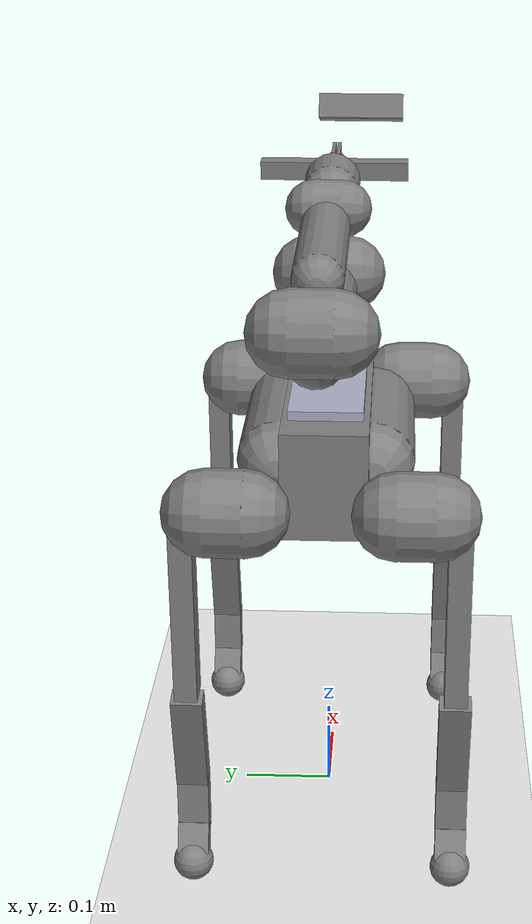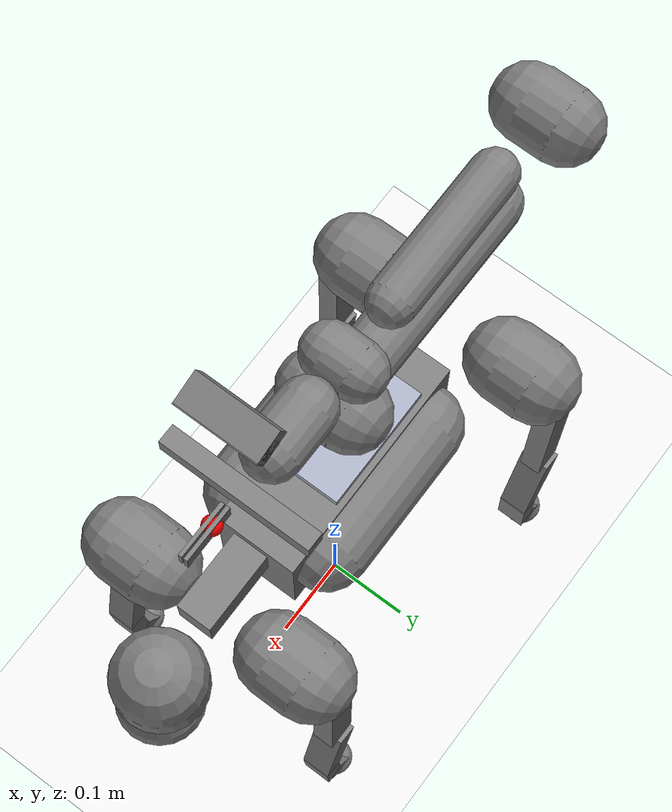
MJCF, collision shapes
<mujoco model="flat scene">
      <include file="go2_piper_l.xml"/>

      <statistic center="0 0 0.1" extent="0.8"/>

      <visual>
            <headlight diffuse="0.4 0.4 0.4" ambient="0.25 0.25 0.25" specular="0.25 0.25 0.25"/>
            <rgba haze="0.99 0.99 0.99 1"/>
            <global azimuth="-130" elevation="-20"/>
      </visual>
      <asset>
            <texture
                  type="skybox"
                  builtin="gradient"
                  rgb1="0.99 0.99 0.99"
                  rgb2="0.99 0.99 0.99"
                  width="512"
                  height="3072"
            />
            <texture
                  type="2d"
                  name="groundplane"
                  builtin="checker"
                  mark="edge"
                  rgb1="0.93 0.93 0.93"
                  rgb2="0.93 0.93 0.93"
                  markrgb="0 0 0"
                  width="250"
                  height="250"
            />
            <material name="groundplane" texture="groundplane" texuniform="true" texrepeat="5 5" reflectance="0.0"/>

      </asset>

      <worldbody>
            <light pos="0 0 5.0" dir="0 0 -1" directional="true" castshadow="false"/>

            <geom name="floor" size="0 0 0.05" type="plane" material="groundplane"/>
      </worldbody>
</mujoco>

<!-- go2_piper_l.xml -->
<mujoco model="go2_piper_l">
    <compiler angle="radian" autolimits="true"/>

    <option cone="elliptic" impratio="100"/>

    <default>
        <default class="go2">
            <joint axis="0 1 0"/>
            <geom friction="0.6" margin="0.001"/>
            <motor ctrlrange="-23.7 23.7"/>
            <default class="abduction">
                <joint axis="1 0 0" range="-1.0472 1.0472"/>
            </default>
            <default class="hip">
                <default class="front_hip">
                    <joint range="-1.5708 3.4907"/>
                </default>
                <default class="back_hip">
                    <joint range="-0.5236 4.5379"/>
                </default>
            </default>
            <default class="knee">
                <joint range="-2.7227 -0.83776"/>
                <motor ctrlrange="-45.43 45.43"/>
            </default>
            <default class="visual">
                <geom type="mesh" contype="0" conaffinity="0" group="2"/>
            </default>
            <default class="collision">
                <geom group="3"/>
            </default>
        </default>
    </default>

    <asset>
        <material name="metal" rgba=".9 .95 .95 1"/>
        <material name="black" rgba="0 0 0 1"/>
        <material name="white" rgba="1 1 1 1"/>
        <material name="gray" rgba="0.671705 0.692426 0.774270 1"/>

        <mesh file="go2/assets/base_0.obj"/>
        <mesh file="go2/assets/base_1.obj"/>
        <mesh file="go2/assets/base_2.obj"/>
        <mesh file="go2/assets/base_3.obj"/>
        <mesh file="go2/assets/base_4.obj"/>
        <mesh file="go2/assets/hip_0.obj"/>
        <mesh file="go2/assets/hip_1.obj"/>
        <mesh file="go2/assets/thigh_0.obj"/>
        <mesh file="go2/assets/thigh_1.obj"/>
        <mesh file="go2/assets/thigh_mirror_0.obj"/>
        <mesh file="go2/assets/thigh_mirror_1.obj"/>
        <mesh file="go2/assets/calf_0.obj"/>
        <mesh file="go2/assets/calf_1.obj"/>
        <mesh file="go2/assets/calf_mirror_0.obj"/>
        <mesh file="go2/assets/calf_mirror_1.obj"/>
        <mesh file="go2/assets/foot.obj"/>

        <mesh name="base_link" file="piper_l/assets/base_link.STL"/>
        <mesh name="link1" file="piper_l/assets/link1.STL"/>
        <mesh name="link2" file="piper_l/assets/link2.STL"/>
        <mesh name="link3" file="piper_l/assets/link3.STL"/>
        <mesh name="link4" file="piper_l/assets/link4.STL"/>
        <mesh name="link5" file="piper_l/assets/link5.STL"/>
        <mesh name="link7" file="piper_l/assets/link7.STL"/>
        <mesh name="link8" file="piper_l/assets/link8.STL"/>
        <mesh name="gripper_base_100_v3" file="piper_l/assets/gripper_base_100_v3.STL"/>
        <mesh name="realsense_mid_stand_v2" content_type="model/stl" file="piper_l/assets/realsense_mid_stand_v2.STL"/>
    </asset>

    <worldbody>
        <body name="base" pos="0 0 0.445" childclass="go2">
            <inertial pos="0.021112 0 -0.005366" quat="-0.000543471 0.713435 -0.00173769 0.700719" mass="6.921"
                      diaginertia="0.107027 0.0980771 0.0244531"/>
            <freejoint/>

            <geom mesh="base_0" material="black" class="visual"/>
            <geom mesh="base_1" material="black" class="visual"/>
            <geom mesh="base_2" material="black" class="visual"/>
            <geom mesh="base_3" material="white" class="visual"/>
            <geom mesh="base_4" material="gray" class="visual"/>
            <geom size="0.07 0.04 0.01" pos="-0.02 0.0 0.06" material="gray" type="box" class="visual"/>

            <geom size="0.13 0.04675 0.06" type="box" class="collision"/>
            <geom size="0.07 0.04 0.01" pos="-0.02 0.0 0.06" type="box" class="collision"/>
            <geom size="0.045 0.02 0.02" pos="0.18 0.0 0.055" type="box" class="collision"/>
            <geom size="0.045 0.08" pos="0.0 0.05 0.01" quat="0.707107 0 0.707107 0" type="capsule" class="collision"/>
            <geom size="0.045 0.08" pos="0.0 -0.05 0.01" quat="0.707107 0 0.707107 0" type="capsule" class="collision"/>

            <geom size="0.05 0.018" pos="0.285 0 0.01" type="capsule" class="collision"/>
            <geom size="0.047" pos="0.293 0 -0.06" class="collision"/>

            <site name="imu" pos="-0.02557 0 0.04232"/>

            <body name="FL_hip" pos="0.1934 0.0465 0">
                <inertial pos="-0.0054 0.00194 -0.000105" quat="0.497014 0.499245 0.505462 0.498237" mass="0.678"
                          diaginertia="0.00088403 0.000596003 0.000479967"/>
                <joint name="FL_hip_joint" class="abduction" damping="0.1531" armature="0.0010" frictionloss="0.2884"/>
                <geom mesh="hip_0" material="metal" class="visual"/>
                <geom mesh="hip_1" material="gray" class="visual"/>
                <geom size="0.046 0.02" pos="0 0.05 0" quat="1 1 0 0" type="capsule" class="collision"/>
                <body name="FL_thigh" pos="0 0.0955 0">
                    <inertial pos="-0.00374 -0.0223 -0.0327" quat="0.829533 0.0847635 -0.0200632 0.551623" mass="1.152"
                              diaginertia="0.00594973 0.00584149 0.000878787"/>
                    <joint name="FL_thigh_joint" class="front_hip" damping="0.2406" armature="0.0197" frictionloss="0.1739"/>
                    <geom mesh="thigh_0" material="metal" class="visual"/>
                    <geom mesh="thigh_1" material="gray" class="visual"/>
                    <geom size="0.1065 0.01225 0.017" pos="0 0 -0.1065" quat="0.707107 0 0.707107 0" type="box"
                          class="collision"/>
                    <body name="FL_calf" pos="0 0 -0.213">
                        <inertial pos="0.00629595 -0.000622121 -0.141417"
                                  quat="0.710672 0.00154099 -0.00450087 0.703508"
                                  mass="0.241352" diaginertia="0.0014901 0.00146356 5.31397e-05"/>
                        <joint name="FL_calf_joint" class="knee" damping="0.1450" armature="0.0356" frictionloss="1.0151"/>
                        <geom mesh="calf_0" material="gray" class="visual"/>
                        <geom mesh="calf_1" material="black" class="visual"/>
                        <geom size="0.012 0.017  0.06" pos="0.008 0 -0.06" quat="0.994493 0 -0.104807 0" type="box"
                              class="collision"/>
                        <geom size="0.011 0.017  0.03" pos="0.02 0 -0.148" quat="0.999688 0 0.0249974 0" type="box"
                              class="collision"/>
                        <geom size="0.011 0.017  0.017" pos="0.008 0 -0.190" quat="0.999688 0 0.249974 0" type="box"
                              class="collision"/>
                        <geom pos="0 0 -0.213" mesh="foot" class="visual" material="black"/>

                        <!--geom name="FL" class="collision" size="0.022" pos="-0.002 0 -0.213" priority="1" condim="6"
                          friction="0.8 0.02 0.01"/-->

                        <body name="FL_foot" pos="-0.002 0 -0.213">
                            <inertial pos="0 0 0" mass="0.02" diaginertia="3.872e-06 3.872e-06 3.872e-06"/>
                            <!-- FL_foot only collision -->
                            <geom name="FL" class="collision" size="0.022"/>
                        </body>

                    </body>
                </body>
            </body>
            <body name="FR_hip" pos="0.1934 -0.0465 0">
                <inertial pos="-0.0054 -0.00194 -0.000105" quat="0.498237 0.505462 0.499245 0.497014" mass="0.678"
                          diaginertia="0.00088403 0.000596003 0.000479967"/>
                <joint name="FR_hip_joint" class="abduction" damping="0.2628" armature="0.0129" frictionloss="0.1835"/>
                <geom mesh="hip_0" material="metal" class="visual" quat="4.63268e-05 1 0 0"/>
                <geom mesh="hip_1" material="gray" class="visual" quat="4.63268e-05 1 0 0"/>
                <geom size="0.046 0.02" pos="0 -0.05 0" quat="0.707107 0.707107 0 0" type="capsule" class="collision"/>
                <body name="FR_thigh" pos="0 -0.0955 0">
                    <inertial pos="-0.00374 0.0223 -0.0327" quat="0.551623 -0.0200632 0.0847635 0.829533" mass="1.152"
                              diaginertia="0.00594973 0.00584149 0.000878787"/>
                    <joint name="FR_thigh_joint" class="front_hip" damping="0.1420" armature="0.0135" frictionloss="0.2386"/>
                    <geom mesh="thigh_mirror_0" material="metal" class="visual"/>
                    <geom mesh="thigh_mirror_1" material="gray" class="visual"/>
                    <geom size="0.1065 0.01225 0.017" pos="0 0 -0.1065" quat="0.707107 0 0.707107 0" type="box"
                          class="collision"/>
                    <body name="FR_calf" pos="0 0 -0.213">
                        <inertial pos="0.00629595 0.000622121 -0.141417" quat="0.703508 -0.00450087 0.00154099 0.710672"
                                  mass="0.241352" diaginertia="0.0014901 0.00146356 5.31397e-05"/>
                        <joint name="FR_calf_joint" class="knee" damping="0.1728" armature="0.0371" frictionloss="0.4912"/>
                        <geom mesh="calf_mirror_0" material="gray" class="visual"/>
                        <geom mesh="calf_mirror_1" material="black" class="visual"/>
                        <geom size="0.012 0.017  0.06" pos="0.008 0 -0.06" quat="0.994493 0 -0.104807 0" type="box"
                              class="collision"/>
                        <geom size="0.011 0.017  0.03" pos="0.02 0 -0.148" quat="0.999688 0 0.0249974 0" type="box"
                              class="collision"/>
                        <geom size="0.011 0.017  0.017" pos="0.008 0 -0.190" quat="0.999688 0 0.249974 0" type="box"
                              class="collision"/>
                        <geom pos="0 0 -0.213" mesh="foot" class="visual" material="black"/>

                        <!--geom name="FR" class="collision" size="0.022" pos="-0.002 0 -0.213" priority="1" condim="6"
                          friction="0.8 0.02 0.01"/-->

                        <body name="FR_foot" pos="-0.002 0 -0.213">
                            <inertial pos="0 0 0" mass="0.02" diaginertia="3.872e-06 3.872e-06 3.872e-06"/>
                            <!-- FR_foot only collision -->
                            <geom name="FR" class="collision" size="0.022"/>
                        </body>

                    </body>
                </body>
            </body>
            <body name="RL_hip" pos="-0.1934 0.0465 0">
                <inertial pos="0.0054 0.00194 -0.000105" quat="0.505462 0.498237 0.497014 0.499245" mass="0.678"
                          diaginertia="0.00088403 0.000596003 0.000479967"/>
                <joint name="RL_hip_joint" class="abduction" damping="0.2243" armature="0.0075" frictionloss="0.1550"/>
                <geom mesh="hip_0" material="metal" class="visual" quat="4.63268e-05 0 1 0"/>
                <geom mesh="hip_1" material="gray" class="visual" quat="4.63268e-05 0 1 0"/>
                <geom size="0.046 0.02" pos="0 0.05 0" quat="0.707107 0.707107 0 0" type="capsule" class="collision"/>
                <body name="RL_thigh" pos="0 0.0955 0">
                    <inertial pos="-0.00374 -0.0223 -0.0327" quat="0.829533 0.0847635 -0.0200632 0.551623" mass="1.152"
                              diaginertia="0.00594973 0.00584149 0.000878787"/>
                    <joint name="RL_thigh_joint" class="back_hip" damping="0.2352" armature="0.0205" frictionloss="0.1388"/>
                    <geom mesh="thigh_0" material="metal" class="visual"/>
                    <geom mesh="thigh_1" material="gray" class="visual"/>
                    <geom size="0.1065 0.01225 0.017" pos="0 0 -0.1065" quat="0.707107 0 0.707107 0" type="box"
                          class="collision"/>
                    <body name="RL_calf" pos="0 0 -0.213">
                        <inertial pos="0.00629595 -0.000622121 -0.141417"
                                  quat="0.710672 0.00154099 -0.00450087 0.703508"
                                  mass="0.241352" diaginertia="0.0014901 0.00146356 5.31397e-05"/>
                        <joint name="RL_calf_joint" class="knee" damping="0.1201" armature="0.0228" frictionloss="1.3573"/>
                        <geom mesh="calf_0" material="gray" class="visual"/>
                        <geom mesh="calf_1" material="black" class="visual"/>
                        <geom size="0.012 0.017  0.06" pos="0.008 0 -0.06" quat="0.994493 0 -0.104807 0" type="box"
                              class="collision"/>
                        <geom size="0.011 0.017  0.03" pos="0.02 0 -0.148" quat="0.999688 0 0.0249974 0" type="box"
                              class="collision"/>
                        <geom size="0.011 0.017  0.017" pos="0.008 0 -0.190" quat="0.999688 0 0.249974 0" type="box"
                              class="collision"/>
                        <geom pos="0 0 -0.213" mesh="foot" class="visual" material="black"/>

                        <!--geom name="RL" class="collision" size="0.022" pos="-0.002 0 -0.213" priority="1" condim="6"
                          friction="0.8 0.02 0.01"/-->

                        <body name="RL_foot" pos="-0.002 0 -0.213">
                            <inertial pos="0 0 0" mass="0.02" diaginertia="3.872e-06 3.872e-06 3.872e-06"/>
                            <!-- RL_foot only collision -->
                            <geom name="RL" class="collision" size="0.022"/>
                        </body>

                    </body>
                </body>
            </body>
            <body name="RR_hip" pos="-0.1934 -0.0465 0">
                <inertial pos="0.0054 -0.00194 -0.000105" quat="0.499245 0.497014 0.498237 0.505462" mass="0.678"
                          diaginertia="0.00088403 0.000596003 0.000479967"/>
                <joint name="RR_hip_joint" class="abduction" damping="0.2989" armature="0.0081" frictionloss="0.2488"/>
                <geom mesh="hip_0" material="metal" class="visual" quat="2.14617e-09 4.63268e-05 4.63268e-05 -1"/>
                <geom mesh="hip_1" material="gray" class="visual" quat="2.14617e-09 4.63268e-05 4.63268e-05 -1"/>
                <geom size="0.046 0.02" pos="0 -0.05 0" quat="0.707107 0.707107 0 0" type="capsule" class="collision"/>
                <body name="RR_thigh" pos="0 -0.0955 0">
                    <inertial pos="-0.00374 0.0223 -0.0327" quat="0.551623 -0.0200632 0.0847635 0.829533" mass="1.152"
                              diaginertia="0.00594973 0.00584149 0.000878787"/>
                    <joint name="RR_thigh_joint" class="back_hip" damping="0.1983" armature="0.0139" frictionloss="0.2484"/>
                    <geom mesh="thigh_mirror_0" material="metal" class="visual"/>
                    <geom mesh="thigh_mirror_1" material="gray" class="visual"/>
                    <geom size="0.1065 0.01225 0.017" pos="0 0 -0.1065" quat="0.707107 0 0.707107 0" type="box"
                          class="collision"/>
                    <body name="RR_calf" pos="0 0 -0.213">
                        <inertial pos="0.00629595 0.000622121 -0.141417" quat="0.703508 -0.00450087 0.00154099 0.710672"
                                  mass="0.241352" diaginertia="0.0014901 0.00146356 5.31397e-05"/>
                        <joint name="RR_calf_joint" class="knee" damping="0.1000" armature="0.0332" frictionloss="0.7893"/>
                        <geom mesh="calf_mirror_0" material="gray" class="visual"/>
                        <geom mesh="calf_mirror_1" material="black" class="visual"/>
                        <geom size="0.012 0.017  0.06" pos="0.008 0 -0.06" quat="0.994493 0 -0.104807 0" type="box"
                              class="collision"/>
                        <geom size="0.011 0.017  0.03" pos="0.02 0 -0.148" quat="0.999688 0 0.0249974 0" type="box"
                              class="collision"/>
                        <geom size="0.011 0.017  0.017" pos="0.008 0 -0.190" quat="0.999688 0 0.249974 0" type="box"
                              class="collision"/>
                        <geom pos="0 0 -0.213" mesh="foot" class="visual" material="black"/>

                        <!--geom name="RR" class="collision" size="0.022" pos="-0.002 0 -0.213" priority="1" condim="6"
                          friction="0.8 0.02 0.01"/-->

                        <body name="RR_foot" pos="-0.002 0 -0.213">
                            <inertial pos="0 0 0" mass="0.02" diaginertia="3.872e-06 3.872e-06 3.872e-06"/>
                            <!-- RR_foot only collision -->
                            <geom name="RR" class="collision" size="0.022"/>
                        </body>

                    </body>
                </body>
            </body>

            <!-- piper_l arm (from piper_l/piper_l.xml) -->
            <geom pos="0 0 0.07" quat="0.999994 0.000457118 0.00346448 0" class="visual" material="gray" mesh="base_link"/>
            <body name="link1" pos="0.000852257 -0.00011245 0.192997" quat="0.999994 0.000457118 0.00346448 0">
              <inertial pos="-0.000108818 0.000607029 -0.00538686" quat="0.701411 0.712748 -0.000102414 -0.00362695" mass="0.71" diaginertia="0.000458361 0.000409985 0.000334505"/>
              <joint name="joint1" pos="0 0 0" axis="0 0 1" range="-2.618 2.618" armature="0.2380" damping="0.5000" frictionloss="0.5000"/>
              <geom class="visual" material="gray" mesh="link1"/>

              <body name="link2" quat="0.047971 -0.0479709 -0.705478 -0.705478">
                <inertial pos="0.258453 -0.00907882 0.00209824" quat="0.33951 0.630002 0.324014 0.618745" mass="1.16404" diaginertia="0.0162743 0.0162573 0.000956571"/>
                <joint name="joint2" pos="0 0 0" axis="0 0 1" range="0 3.14" armature="0.2069" damping="0.5000" frictionloss="0.5000"/>
                <geom class="visual" material="gray" mesh="link2"/>
                <geom class="collision" size="0.04 0.02" quat="0.707107 0 0 0.707107" type="capsule"/>
                <geom class="collision" size="0.03 0.1" pos="0.15 -0.025 0" quat="0.703163 0 0.703163 -0.105474" type="capsule"/>

                <body name="link3" pos="0.33823 0 0" quat="0.624016 0 0 -0.781412">
                  <inertial pos="-0.00810222 -0.192422 -0.000651809" quat="0.709181 0.703284 -0.0204559 0.0451178" mass="0.583343" diaginertia="0.00556992 0.00550867 0.000258804"/>
                  <joint name="joint3" pos="0 0 0" axis="0 0 1" range="-2.697 0" armature="0.3453" damping="0.5000" frictionloss="0.5000"/>
                  <geom class="visual" material="gray" mesh="link3"/>
                  <geom class="collision" size="0.04 0.02" quat="0.707107 0 0 0.707107" type="capsule"/>
                  <geom class="collision" size="0.025 0.08" pos="-0.01 -0.17 0" quat="0.706665 0.706665 0 0.0353333" type="capsule"/>

                  <body name="link4" pos="0 -0.32075 0" quat="0.705117 0.70512 0.0529832 0.0529834">
                    <inertial pos="0.00312889 -0.00168781 -0.00425666" quat="0.859761 0.0861299 -0.104595 0.492395" mass="0.366062" diaginertia="0.000174503 0.000169733 0.000142021"/>
                    <joint name="joint4" pos="0 0 0" axis="0 0 1" range="-1.832 1.832" armature="0.0010" damping="0.2497" frictionloss="0.1074"/>
                    <geom class="visual" material="gray" mesh="link4"/>
                    <geom class="collision" size="0.03 0.015" quat="0.707107 0.707107 0 0" type="capsule"/>

                    <body name="link5" quat="0.706222 -0.706225 -0.0353407 -0.0353405">
                      <inertial pos="0.00417769 -0.0639706 -0.00267944" quat="0.609413 0.425035 -0.377108 0.552947" mass="0.376242" diaginertia="0.000302186 0.000295139 0.000150851"/>
                      <joint name="joint5" pos="0 0 0" axis="0 0 1" range="-1.22 1.22" armature="0.0232" damping="0.1736" frictionloss="0.1433"/>
                      <geom class="visual" material="gray" mesh="link5"/>
                      <geom class="collision" size="0.03 0.025" pos="0 -0.08 0" quat="0.707107 0.707107 0 0" type="capsule"/>

                      <body name="link6" pos="0 -0.091 0" quat="0.707105 0.707108 0 0">
                        <inertial pos="0.0111527268 0.00269159034 0.0371316254" quat="0.491523877 0.525880573 -0.516820751 -0.463411494" mass="0.537494" diaginertia="0.000323982045 0.000453515785 0.000630547405"/>
                        <joint name="joint6" pos="0 0 0" axis="0 0 1" range="-3.14 3.14" armature="0.0010" damping="0.2864" frictionloss="0.0404"/>
                        <geom class="visual" pos="0.008 -0.002 0.064" quat="0.500398 -0.5 -0.499602 0.5" material="gray" mesh="gripper_base_100_v3"/>
                        <geom class="collision" size="0.082 0.01 0.01" pos="0 0 0.06" quat="0.500398 -0.5 -0.499602 0.5" type="box"/>

                        <!-- realsense stand (geometry only, mass is in the link6 inertial) -->
                        <geom pos="-0.034 -0.002 0.023" quat="0.000563312 -0.706825 0.707388 0.000562864" mesh="realsense_mid_stand_v2" class="visual"/>
                        <geom size="0.012525 0.045 0.0125" pos="-0.0740961 -0.03 0.03725" quat="0.819648 0 -0.572867 0" type="box" class="visual"/>
                        <geom size="0.017 0.045 0.0125" pos="-0.0760961 -0.03 0.032" quat="0.819648 0 -0.572867 0" type="box" class="collision"/>

                        <site name="attachment_site" size="0.01" pos="0 0 0.1" rgba="1 0 0 1" group="1"/>

                        <body name="link7" pos="0 0 0.13503" quat="0.707105 0.707108 0 0">
                          <inertial pos="0.000277817 -0.0467674 -0.0092103" quat="0.553273 0.439968 -0.46134 0.536174" mass="0.0264822" diaginertia="1.45133e-05 1.0004e-05 5.87021e-06"/>
                          <joint name="joint7" pos="0 0 0" axis="0 0 -1" type="slide" range="0 0.05" armature="0.0010" damping="0.0010" frictionloss="0.0010"/>
                          <geom class="visual" material="gray" mesh="link7"/>
                          <geom class="collision" size="0.01 0.03 0.002" pos="0 -0.025 -0.003" type="box"/>
                        </body>

                        <body name="link8" pos="0 0 0.13503" quat="0.707105 -0.707108 0 0">
                          <inertial pos="0.000277817 0.0467674 -0.0092103" quat="0.553273 0.439968 -0.46134 0.536174" mass="0.0264822" diaginertia="1.45133e-05 1.0004e-05 5.87021e-06"/>
                          <joint name="joint8" pos="0 0 0" axis="0 0 1" type="slide" range="-0.05 0" armature="0.0010" damping="0.0010" frictionloss="0.0010"/>
                          <geom class="visual" material="gray" mesh="link8"/>
                          <geom class="collision" size="0.01 0.03 0.002" pos="0 0.025 -0.003" type="box"/>
                        </body>

                      </body>
                    </body>
                  </body>
                </body>
              </body>
            </body>
        </body>
    </worldbody>
    <equality>
        <joint joint1="joint8" joint2="joint7" polycoef="0 -1 0 0 0"/>
    </equality>

    <actuator>
        <motor class="abduction" name="FL_hip" joint="FL_hip_joint"/>
        <motor class="hip" name="FL_thigh" joint="FL_thigh_joint"/>
        <motor class="knee" name="FL_calf" joint="FL_calf_joint"/>
        <motor class="abduction" name="FR_hip" joint="FR_hip_joint"/>
        <motor class="hip" name="FR_thigh" joint="FR_thigh_joint"/>
        <motor class="knee" name="FR_calf" joint="FR_calf_joint"/>
        <motor class="abduction" name="RL_hip" joint="RL_hip_joint"/>
        <motor class="hip" name="RL_thigh" joint="RL_thigh_joint"/>
        <motor class="knee" name="RL_calf" joint="RL_calf_joint"/>
        <motor class="abduction" name="RR_hip" joint="RR_hip_joint"/>
        <motor class="hip" name="RR_thigh" joint="RR_thigh_joint"/>
        <motor class="knee" name="RR_calf" joint="RR_calf_joint"/>

        <motor name="joint1" ctrlrange="-32 32" joint="joint1"/>
        <motor name="joint2" ctrlrange="-32 32" joint="joint2"/>
        <motor name="joint3" ctrlrange="-32 32" joint="joint3"/>
        <motor name="joint4" ctrlrange="-8 8" joint="joint4"/>
        <motor name="joint5" ctrlrange="-8 8" joint="joint5"/>
        <motor name="joint6" ctrlrange="-8 8" joint="joint6"/>
        <motor name="gripper" ctrlrange="-0.5 0.5" joint="joint7"/>
    </actuator>

    <sensor>
        <accelerometer name="imu_acc" site="imu"/>
        <gyro name="imu_gyro" site="imu"/>
        <framepos name="imu_pos" objtype="site" objname="imu"/>
        <framequat name="imu_quat" objtype="site" objname="imu"/>

        <jointpos name="joint_FL_hip_joint_pos" joint="FL_hip_joint"/>
        <jointpos name="joint_FL_thigh_joint_pos" joint="FL_thigh_joint"/>
        <jointpos name="joint_FL_calf_joint_pos" joint="FL_calf_joint"/>
        <jointpos name="joint_FR_hip_joint_pos" joint="FR_hip_joint"/>
        <jointpos name="joint_FR_thigh_joint_pos" joint="FR_thigh_joint"/>
        <jointpos name="joint_FR_calf_joint_pos" joint="FR_calf_joint"/>
        <jointpos name="joint_RL_hip_joint_pos" joint="RL_hip_joint"/>
        <jointpos name="joint_RL_thigh_joint_pos" joint="RL_thigh_joint"/>
        <jointpos name="joint_RL_calf_joint_pos" joint="RL_calf_joint"/>
        <jointpos name="joint_RR_hip_joint_pos" joint="RR_hip_joint"/>
        <jointpos name="joint_RR_thigh_joint_pos" joint="RR_thigh_joint"/>
        <jointpos name="joint_RR_calf_joint_pos" joint="RR_calf_joint"/>

        <jointpos name="joint1_pos" joint="joint1"/>
        <jointpos name="joint2_pos" joint="joint2"/>
        <jointpos name="joint3_pos" joint="joint3"/>
        <jointpos name="joint4_pos" joint="joint4"/>
        <jointpos name="joint5_pos" joint="joint5"/>
        <jointpos name="joint6_pos" joint="joint6"/>
        <jointpos name="gripper_pos" joint="joint7"/>
    </sensor>

    <keyframe>
        <key name="home" qpos="0 0 0.27 1 0 0 0 0 0.9 -1.8 0 0.9 -1.8 0 0.9 -1.8 0 0.9 -1.8 0 0 0 0 0 0 0.05 -0.05"/>
        <key name="down" qpos="0 0 0.05 1 0 0 0 0.0 1.21 -2.794 0.0 1.21 -2.794 0.40 1.21 -2.794 -0.40 1.21 -2.794 0 0 0 0 0 0 0.05 -0.05"/>
        <key name="sys_id_1" qpos="0 0 0.05 1 0 0 0 0.0 1.21 -2.5 0.0 1.21 -2.5 0.0 1.21 -2.5 0.0 1.21 -2.5 0 0 0 0 0 0 0.05 -0.05"/>
        <key name="sys_id_2" qpos="0 0 0.05 1 0 0 0 0.6 0.5 -1.4 0.6 0.5 -1.4 0.6 0.5 -1.4 0.6 0.5 -1.4 0 0 0 0 0 0 0.05 -0.05"/>
    </keyframe>
</mujoco>
